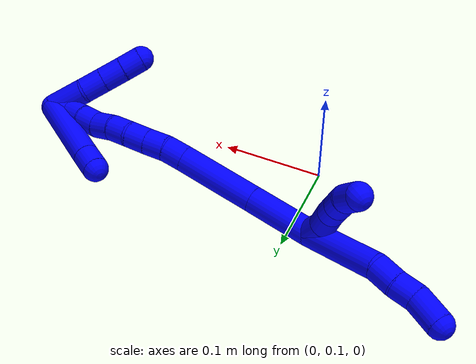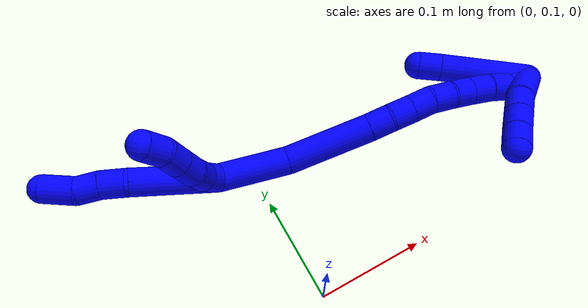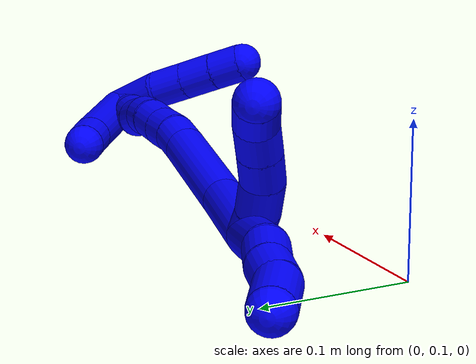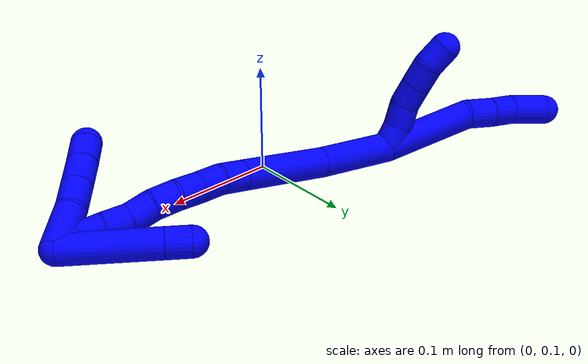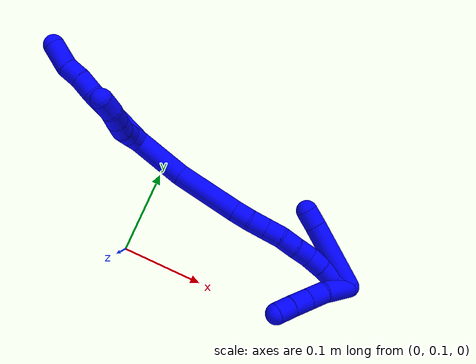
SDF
<sdf version="1.7">
 <world name="default">
  <model name="1">
   <static>0</static>
   <link name="1">
    <collision name="collision-cylinder-e_1_2_8">
     <pose>-0.013044 -0.000897 -0.035909 3.11662 -0.348327 -2.99989</pose>
     <geometry><cylinder><radius>0.0125</radius><length>0.07643</length></cylinder></geometry>
     <surface>
      <friction><ode><mu>1.16</mu><mu2>1.16</mu2><slip1>0</slip1><slip2>0</slip2></ode></friction>
      <contact><ode><kp>1e+06</kp><kd>1</kd><max_vel>0</max_vel><min_depth>0.001</min_depth></ode></contact>
     </surface>
    </collision>
    <visual name="visual-cylinder-e_1_2_8">
     <pose>-0.013044 -0.000897 -0.035909 3.11662 -0.348327 -2.99989</pose>
     <geometry><cylinder><radius>0.0125</radius><length>0.07643</length></cylinder></geometry>
     <material><ambient>0 0 1 1</ambient></material>
    </visual>
    <collision name="collision-cylinder-e_2_8_9">
     <pose>-0.027146 -0.004156 -0.082792 2.9296 -0.094001 -0.83249</pose>
     <geometry><cylinder><radius>0.0125</radius><length>0.022553</length></cylinder></geometry>
     <surface>
      <friction><ode><mu>1.16</mu><mu2>1.16</mu2><slip1>0</slip1><slip2>0</slip2></ode></friction>
      <contact><ode><kp>1e+06</kp><kd>1</kd><max_vel>0</max_vel><min_depth>0.001</min_depth></ode></contact>
     </surface>
    </collision>
    <visual name="visual-cylinder-e_2_8_9">
     <pose>-0.027146 -0.004156 -0.082792 2.9296 -0.094001 -0.83249</pose>
     <geometry><cylinder><radius>0.0125</radius><length>0.022553</length></cylinder></geometry>
     <material><ambient>0 0 1 1</ambient></material>
    </visual>
    <collision name="collision-cylinder-e_3_9_10">
     <pose>-0.030311 -0.00986 -0.103347 2.80598 -0.204737 -1.09025</pose>
     <geometry><cylinder><radius>0.0125</radius><length>0.020724</length></cylinder></geometry>
     <surface>
      <friction><ode><mu>1.16</mu><mu2>1.16</mu2><slip1>0</slip1><slip2>0</slip2></ode></friction>
      <contact><ode><kp>1e+06</kp><kd>1</kd><max_vel>0</max_vel><min_depth>0.001</min_depth></ode></contact>
     </surface>
    </collision>
    <visual name="visual-cylinder-e_3_9_10">
     <pose>-0.030311 -0.00986 -0.103347 2.80598 -0.204737 -1.09025</pose>
     <geometry><cylinder><radius>0.0125</radius><length>0.020724</length></cylinder></geometry>
     <material><ambient>0 0 1 1</ambient></material>
    </visual>
    <collision name="collision-cylinder-e_4_10_6">
     <pose>-0.032126 -0.014817 -0.127984 3.03466 0.019283 0.356495</pose>
     <geometry><cylinder><radius>0.0125</radius><length>0.030294</length></cylinder></geometry>
     <surface>
      <friction><ode><mu>1.16</mu><mu2>1.16</mu2><slip1>0</slip1><slip2>0</slip2></ode></friction>
      <contact><ode><kp>1e+06</kp><kd>1</kd><max_vel>0</max_vel><min_depth>0.001</min_depth></ode></contact>
     </surface>
    </collision>
    <visual name="visual-cylinder-e_4_10_6">
     <pose>-0.032126 -0.014817 -0.127984 3.03466 0.019283 0.356495</pose>
     <geometry><cylinder><radius>0.0125</radius><length>0.030294</length></cylinder></geometry>
     <material><ambient>0 0 1 1</ambient></material>
    </visual>
    <collision name="collision-cylinder-e_1_2_11">
     <pose>-0.007724 0.004014 -0.004923 -2.45759 -0.88257 1.84992</pose>
     <geometry><cylinder><radius>0.0125</radius><length>0.02</length></cylinder></geometry>
     <surface>
      <friction><ode><mu>1.16</mu><mu2>1.16</mu2><slip1>0</slip1><slip2>0</slip2></ode></friction>
      <contact><ode><kp>1e+06</kp><kd>1</kd><max_vel>0</max_vel><min_depth>0.001</min_depth></ode></contact>
     </surface>
    </collision>
    <visual name="visual-cylinder-e_1_2_11">
     <pose>-0.007724 0.004014 -0.004923 -2.45759 -0.88257 1.84992</pose>
     <geometry><cylinder><radius>0.0125</radius><length>0.02</length></cylinder></geometry>
     <material><ambient>0 0 1 1</ambient></material>
    </visual>
    <collision name="collision-cylinder-e_2_11_12">
     <pose>-0.022974 0.013891 -0.012841 -2.04311 -0.852025 1.276</pose>
     <geometry><cylinder><radius>0.0125</radius><length>0.02</length></cylinder></geometry>
     <surface>
      <friction><ode><mu>1.16</mu><mu2>1.16</mu2><slip1>0</slip1><slip2>0</slip2></ode></friction>
      <contact><ode><kp>1e+06</kp><kd>1</kd><max_vel>0</max_vel><min_depth>0.001</min_depth></ode></contact>
     </surface>
    </collision>
    <visual name="visual-cylinder-e_2_11_12">
     <pose>-0.022974 0.013891 -0.012841 -2.04311 -0.852025 1.276</pose>
     <geometry><cylinder><radius>0.0125</radius><length>0.02</length></cylinder></geometry>
     <material><ambient>0 0 1 1</ambient></material>
    </visual>
    <collision name="collision-cylinder-e_3_12_13">
     <pose>-0.036296 0.026375 -0.020588 -2.19322 -0.618316 1.11333</pose>
     <geometry><cylinder><radius>0.0125</radius><length>0.02</length></cylinder></geometry>
     <surface>
      <friction><ode><mu>1.16</mu><mu2>1.16</mu2><slip1>0</slip1><slip2>0</slip2></ode></friction>
      <contact><ode><kp>1e+06</kp><kd>1</kd><max_vel>0</max_vel><min_depth>0.001</min_depth></ode></contact>
     </surface>
    </collision>
    <visual name="visual-cylinder-e_3_12_13">
     <pose>-0.036296 0.026375 -0.020588 -2.19322 -0.618316 1.11333</pose>
     <geometry><cylinder><radius>0.0125</radius><length>0.02</length></cylinder></geometry>
     <material><ambient>0 0 1 1</ambient></material>
    </visual>
    <collision name="collision-cylinder-e_4_13_14">
     <pose>-0.04774 0.039649 -0.030222 -2.20403 -0.600019 1.09669</pose>
     <geometry><cylinder><radius>0.0125</radius><length>0.02</length></cylinder></geometry>
     <surface>
      <friction><ode><mu>1.16</mu><mu2>1.16</mu2><slip1>0</slip1><slip2>0</slip2></ode></friction>
      <contact><ode><kp>1e+06</kp><kd>1</kd><max_vel>0</max_vel><min_depth>0.001</min_depth></ode></contact>
     </surface>
    </collision>
    <visual name="visual-cylinder-e_4_13_14">
     <pose>-0.04774 0.039649 -0.030222 -2.20403 -0.600019 1.09669</pose>
     <geometry><cylinder><radius>0.0125</radius><length>0.02</length></cylinder></geometry>
     <material><ambient>0 0 1 1</ambient></material>
    </visual>
    <collision name="collision-cylinder-e_5_14_5">
     <pose>-0.059 0.050694 -0.04212 -2.58212 -0.596068 1.63777</pose>
     <geometry><cylinder><radius>0.0125</radius><length>0.02</length></cylinder></geometry>
     <surface>
      <friction><ode><mu>1.16</mu><mu2>1.16</mu2><slip1>0</slip1><slip2>0</slip2></ode></friction>
      <contact><ode><kp>1e+06</kp><kd>1</kd><max_vel>0</max_vel><min_depth>0.001</min_depth></ode></contact>
     </surface>
    </collision>
    <visual name="visual-cylinder-e_5_14_5">
     <pose>-0.059 0.050694 -0.04212 -2.58212 -0.596068 1.63777</pose>
     <geometry><cylinder><radius>0.0125</radius><length>0.02</length></cylinder></geometry>
     <material><ambient>0 0 1 1</ambient></material>
    </visual>
    <collision name="collision-cylinder-e_1_2_15">
     <pose>0.008266 0.009158 0.029005 -0.305816 0.265364 -0.041131</pose>
     <geometry><cylinder><radius>0.0125</radius><length>0.06304</length></cylinder></geometry>
     <surface>
      <friction><ode><mu>1.16</mu><mu2>1.16</mu2><slip1>0</slip1><slip2>0</slip2></ode></friction>
      <contact><ode><kp>1e+06</kp><kd>1</kd><max_vel>0</max_vel><min_depth>0.001</min_depth></ode></contact>
     </surface>
    </collision>
    <visual name="visual-cylinder-e_1_2_15">
     <pose>0.008266 0.009158 0.029005 -0.305816 0.265364 -0.041131</pose>
     <geometry><cylinder><radius>0.0125</radius><length>0.06304</length></cylinder></geometry>
     <material><ambient>0 0 1 1</ambient></material>
    </visual>
    <collision name="collision-cylinder-e_2_15_16">
     <pose>0.02573 0.035018 0.091028 -0.468325 0.243624 -0.058386</pose>
     <geometry><cylinder><radius>0.0125</radius><length>0.076255</length></cylinder></geometry>
     <surface>
      <friction><ode><mu>1.16</mu><mu2>1.16</mu2><slip1>0</slip1><slip2>0</slip2></ode></friction>
      <contact><ode><kp>1e+06</kp><kd>1</kd><max_vel>0</max_vel><min_depth>0.001</min_depth></ode></contact>
     </surface>
    </collision>
    <visual name="visual-cylinder-e_2_15_16">
     <pose>0.02573 0.035018 0.091028 -0.468325 0.243624 -0.058386</pose>
     <geometry><cylinder><radius>0.0125</radius><length>0.076255</length></cylinder></geometry>
     <material><ambient>0 0 1 1</ambient></material>
    </visual>
    <collision name="collision-cylinder-e_3_16_17">
     <pose>0.037511 0.056504 0.132585 -0.510736 0.258133 -0.067741</pose>
     <geometry><cylinder><radius>0.0125</radius><length>0.020246</length></cylinder></geometry>
     <surface>
      <friction><ode><mu>1.16</mu><mu2>1.16</mu2><slip1>0</slip1><slip2>0</slip2></ode></friction>
      <contact><ode><kp>1e+06</kp><kd>1</kd><max_vel>0</max_vel><min_depth>0.001</min_depth></ode></contact>
     </surface>
    </collision>
    <visual name="visual-cylinder-e_3_16_17">
     <pose>0.037511 0.056504 0.132585 -0.510736 0.258133 -0.067741</pose>
     <geometry><cylinder><radius>0.0125</radius><length>0.020246</length></cylinder></geometry>
     <material><ambient>0 0 1 1</ambient></material>
    </visual>
    <collision name="collision-cylinder-e_4_17_18">
     <pose>0.044221 0.065037 0.149539 -0.419008 0.420969 -0.090791</pose>
     <geometry><cylinder><radius>0.0125</radius><length>0.020189</length></cylinder></geometry>
     <surface>
      <friction><ode><mu>1.16</mu><mu2>1.16</mu2><slip1>0</slip1><slip2>0</slip2></ode></friction>
      <contact><ode><kp>1e+06</kp><kd>1</kd><max_vel>0</max_vel><min_depth>0.001</min_depth></ode></contact>
     </surface>
    </collision>
    <visual name="visual-cylinder-e_4_17_18">
     <pose>0.044221 0.065037 0.149539 -0.419008 0.420969 -0.090791</pose>
     <geometry><cylinder><radius>0.0125</radius><length>0.020189</length></cylinder></geometry>
     <material><ambient>0 0 1 1</ambient></material>
    </visual>
    <collision name="collision-cylinder-e_5_18_19">
     <pose>0.052154 0.072952 0.166313 -0.462494 0.387184 -0.092257</pose>
     <geometry><cylinder><radius>0.0125</radius><length>0.020171</length></cylinder></geometry>
     <surface>
      <friction><ode><mu>1.16</mu><mu2>1.16</mu2><slip1>0</slip1><slip2>0</slip2></ode></friction>
      <contact><ode><kp>1e+06</kp><kd>1</kd><max_vel>0</max_vel><min_depth>0.001</min_depth></ode></contact>
     </surface>
    </collision>
    <visual name="visual-cylinder-e_5_18_19">
     <pose>0.052154 0.072952 0.166313 -0.462494 0.387184 -0.092257</pose>
     <geometry><cylinder><radius>0.0125</radius><length>0.020171</length></cylinder></geometry>
     <material><ambient>0 0 1 1</ambient></material>
    </visual>
    <collision name="collision-cylinder-e_6_19_20">
     <pose>0.059974 0.079206 0.183643 -0.22858 0.410785 -0.047819</pose>
     <geometry><cylinder><radius>0.0125</radius><length>0.020094</length></cylinder></geometry>
     <surface>
      <friction><ode><mu>1.16</mu><mu2>1.16</mu2><slip1>0</slip1><slip2>0</slip2></ode></friction>
      <contact><ode><kp>1e+06</kp><kd>1</kd><max_vel>0</max_vel><min_depth>0.001</min_depth></ode></contact>
     </surface>
    </collision>
    <visual name="visual-cylinder-e_6_19_20">
     <pose>0.059974 0.079206 0.183643 -0.22858 0.410785 -0.047819</pose>
     <geometry><cylinder><radius>0.0125</radius><length>0.020094</length></cylinder></geometry>
     <material><ambient>0 0 1 1</ambient></material>
    </visual>
    <collision name="collision-cylinder-e_7_20_21">
     <pose>0.06924 0.082246 0.201071 -0.112113 0.55307 -0.031849</pose>
     <geometry><cylinder><radius>0.0125</radius><length>0.020003</length></cylinder></geometry>
     <surface>
      <friction><ode><mu>1.16</mu><mu2>1.16</mu2><slip1>0</slip1><slip2>0</slip2></ode></friction>
      <contact><ode><kp>1e+06</kp><kd>1</kd><max_vel>0</max_vel><min_depth>0.001</min_depth></ode></contact>
     </surface>
    </collision>
    <visual name="visual-cylinder-e_7_20_21">
     <pose>0.06924 0.082246 0.201071 -0.112113 0.55307 -0.031849</pose>
     <geometry><cylinder><radius>0.0125</radius><length>0.020003</length></cylinder></geometry>
     <material><ambient>0 0 1 1</ambient></material>
    </visual>
    <collision name="collision-cylinder-e_8_21_22">
     <pose>0.077863 0.085027 0.218765 -0.19548 0.34364 -0.034027</pose>
     <geometry><cylinder><radius>0.0125</radius><length>0.020001</length></cylinder></geometry>
     <surface>
      <friction><ode><mu>1.16</mu><mu2>1.16</mu2><slip1>0</slip1><slip2>0</slip2></ode></friction>
      <contact><ode><kp>1e+06</kp><kd>1</kd><max_vel>0</max_vel><min_depth>0.001</min_depth></ode></contact>
     </surface>
    </collision>
    <visual name="visual-cylinder-e_8_21_22">
     <pose>0.077863 0.085027 0.218765 -0.19548 0.34364 -0.034027</pose>
     <geometry><cylinder><radius>0.0125</radius><length>0.020001</length></cylinder></geometry>
     <material><ambient>0 0 1 1</ambient></material>
    </visual>
    <collision name="collision-cylinder-e_9_22_23">
     <pose>0.084698 0.087588 0.237353 -0.078122 0.353946 -0.013979</pose>
     <geometry><cylinder><radius>0.0125</radius><length>0.02</length></cylinder></geometry>
     <surface>
      <friction><ode><mu>1.16</mu><mu2>1.16</mu2><slip1>0</slip1><slip2>0</slip2></ode></friction>
      <contact><ode><kp>1e+06</kp><kd>1</kd><max_vel>0</max_vel><min_depth>0.001</min_depth></ode></contact>
     </surface>
    </collision>
    <visual name="visual-cylinder-e_9_22_23">
     <pose>0.084698 0.087588 0.237353 -0.078122 0.353946 -0.013979</pose>
     <geometry><cylinder><radius>0.0125</radius><length>0.02</length></cylinder></geometry>
     <material><ambient>0 0 1 1</ambient></material>
    </visual>
    <collision name="collision-cylinder-e_10_23_1">
     <pose>0.092952 0.091698 0.254808 -0.395009 0.499268 -0.10195</pose>
     <geometry><cylinder><radius>0.0125</radius><length>0.02</length></cylinder></geometry>
     <surface>
      <friction><ode><mu>1.16</mu><mu2>1.16</mu2><slip1>0</slip1><slip2>0</slip2></ode></friction>
      <contact><ode><kp>1e+06</kp><kd>1</kd><max_vel>0</max_vel><min_depth>0.001</min_depth></ode></contact>
     </surface>
    </collision>
    <visual name="visual-cylinder-e_10_23_1">
     <pose>0.092952 0.091698 0.254808 -0.395009 0.499268 -0.10195</pose>
     <geometry><cylinder><radius>0.0125</radius><length>0.02</length></cylinder></geometry>
     <material><ambient>0 0 1 1</ambient></material>
    </visual>
    <collision name="collision-cylinder-e_1_1_24">
     <pose>0.09781 0.094516 0.223008 3.12755 0.001751 0.248062</pose>
     <geometry><cylinder><radius>0.0125</radius><length>0.079815</length></cylinder></geometry>
     <surface>
      <friction><ode><mu>1.16</mu><mu2>1.16</mu2><slip1>0</slip1><slip2>0</slip2></ode></friction>
      <contact><ode><kp>1e+06</kp><kd>1</kd><max_vel>0</max_vel><min_depth>0.001</min_depth></ode></contact>
     </surface>
    </collision>
    <visual name="visual-cylinder-e_1_1_24">
     <pose>0.09781 0.094516 0.223008 3.12755 0.001751 0.248062</pose>
     <geometry><cylinder><radius>0.0125</radius><length>0.079815</length></cylinder></geometry>
     <material><ambient>0 0 1 1</ambient></material>
    </visual>
    <collision name="collision-cylinder-e_2_24_4">
     <pose>0.097816 0.093521 0.173021 3.09854 -0.006358 -0.2932</pose>
     <geometry><cylinder><radius>0.0125</radius><length>0.020185</length></cylinder></geometry>
     <surface>
      <friction><ode><mu>1.16</mu><mu2>1.16</mu2><slip1>0</slip1><slip2>0</slip2></ode></friction>
      <contact><ode><kp>1e+06</kp><kd>1</kd><max_vel>0</max_vel><min_depth>0.001</min_depth></ode></contact>
     </surface>
    </collision>
    <visual name="visual-cylinder-e_2_24_4">
     <pose>0.097816 0.093521 0.173021 3.09854 -0.006358 -0.2932</pose>
     <geometry><cylinder><radius>0.0125</radius><length>0.020185</length></cylinder></geometry>
     <material><ambient>0 0 1 1</ambient></material>
    </visual>
    <collision name="collision-cylinder-e_1_1_25">
     <pose>0.081125 0.091447 0.257624 2.54002 -1.20245 -2.29219</pose>
     <geometry><cylinder><radius>0.0125</radius><length>0.035619</length></cylinder></geometry>
     <surface>
      <friction><ode><mu>1.16</mu><mu2>1.16</mu2><slip1>0</slip1><slip2>0</slip2></ode></friction>
      <contact><ode><kp>1e+06</kp><kd>1</kd><max_vel>0</max_vel><min_depth>0.001</min_depth></ode></contact>
     </surface>
    </collision>
    <visual name="visual-cylinder-e_1_1_25">
     <pose>0.081125 0.091447 0.257624 2.54002 -1.20245 -2.29219</pose>
     <geometry><cylinder><radius>0.0125</radius><length>0.035619</length></cylinder></geometry>
     <material><ambient>0 0 1 1</ambient></material>
    </visual>
    <collision name="collision-cylinder-e_2_25_26">
     <pose>0.054357 0.083945 0.250822 1.94379 -1.18201 -1.55379</pose>
     <geometry><cylinder><radius>0.0125</radius><length>0.021944</length></cylinder></geometry>
     <surface>
      <friction><ode><mu>1.16</mu><mu2>1.16</mu2><slip1>0</slip1><slip2>0</slip2></ode></friction>
      <contact><ode><kp>1e+06</kp><kd>1</kd><max_vel>0</max_vel><min_depth>0.001</min_depth></ode></contact>
     </surface>
    </collision>
    <visual name="visual-cylinder-e_2_25_26">
     <pose>0.054357 0.083945 0.250822 1.94379 -1.18201 -1.55379</pose>
     <geometry><cylinder><radius>0.0125</radius><length>0.021944</length></cylinder></geometry>
     <material><ambient>0 0 1 1</ambient></material>
    </visual>
    <collision name="collision-cylinder-e_3_26_27">
     <pose>0.033958 0.076205 0.247772 1.94844 -1.18513 -1.56216</pose>
     <geometry><cylinder><radius>0.0125</radius><length>0.022117</length></cylinder></geometry>
     <surface>
      <friction><ode><mu>1.16</mu><mu2>1.16</mu2><slip1>0</slip1><slip2>0</slip2></ode></friction>
      <contact><ode><kp>1e+06</kp><kd>1</kd><max_vel>0</max_vel><min_depth>0.001</min_depth></ode></contact>
     </surface>
    </collision>
    <visual name="visual-cylinder-e_3_26_27">
     <pose>0.033958 0.076205 0.247772 1.94844 -1.18513 -1.56216</pose>
     <geometry><cylinder><radius>0.0125</radius><length>0.022117</length></cylinder></geometry>
     <material><ambient>0 0 1 1</ambient></material>
    </visual>
    <collision name="collision-cylinder-e_4_27_3">
     <pose>0.014305 0.068658 0.245142 1.86036 -1.18317 -1.46697</pose>
     <geometry><cylinder><radius>0.0125</radius><length>0.02032</length></cylinder></geometry>
     <surface>
      <friction><ode><mu>1.16</mu><mu2>1.16</mu2><slip1>0</slip1><slip2>0</slip2></ode></friction>
      <contact><ode><kp>1e+06</kp><kd>1</kd><max_vel>0</max_vel><min_depth>0.001</min_depth></ode></contact>
     </surface>
    </collision>
    <visual name="visual-cylinder-e_4_27_3">
     <pose>0.014305 0.068658 0.245142 1.86036 -1.18317 -1.46697</pose>
     <geometry><cylinder><radius>0.0125</radius><length>0.02032</length></cylinder></geometry>
     <material><ambient>0 0 1 1</ambient></material>
    </visual>
    <collision name="collision-sphere-3">
     <pose>0.004899 0.064978 0.244045 0 -0 0</pose>
     <geometry><sphere><radius>0.0125</radius></sphere></geometry>
     <surface>
      <friction><ode><mu>1.16</mu><mu2>1.16</mu2><slip1>0</slip1><slip2>0</slip2></ode></friction>
      <contact><ode><kp>1e+06</kp><kd>1</kd><max_vel>0</max_vel><min_depth>0.001</min_depth></ode></contact>
     </surface>
    </collision>
    <visual name="visual-sphere-3">
     <pose>0.004899 0.064978 0.244045 0 -0 0</pose>
     <geometry><sphere><radius>0.0125</radius></sphere></geometry>
     <material><ambient>0 0 1 1</ambient></material>
    </visual>
    <collision name="collision-sphere-27">
     <pose>0.023712 0.072339 0.246238 0 -0 0</pose>
     <geometry><sphere><radius>0.0125</radius></sphere></geometry>
     <surface>
      <friction><ode><mu>1.16</mu><mu2>1.16</mu2><slip1>0</slip1><slip2>0</slip2></ode></friction>
      <contact><ode><kp>1e+06</kp><kd>1</kd><max_vel>0</max_vel><min_depth>0.001</min_depth></ode></contact>
     </surface>
    </collision>
    <visual name="visual-sphere-27">
     <pose>0.023712 0.072339 0.246238 0 -0 0</pose>
     <geometry><sphere><radius>0.0125</radius></sphere></geometry>
     <material><ambient>0 0 1 1</ambient></material>
    </visual>
    <collision name="collision-sphere-26">
     <pose>0.044204 0.080072 0.249306 0 -0 0</pose>
     <geometry><sphere><radius>0.0125</radius></sphere></geometry>
     <surface>
      <friction><ode><mu>1.16</mu><mu2>1.16</mu2><slip1>0</slip1><slip2>0</slip2></ode></friction>
      <contact><ode><kp>1e+06</kp><kd>1</kd><max_vel>0</max_vel><min_depth>0.001</min_depth></ode></contact>
     </surface>
    </collision>
    <visual name="visual-sphere-26">
     <pose>0.044204 0.080072 0.249306 0 -0 0</pose>
     <geometry><sphere><radius>0.0125</radius></sphere></geometry>
     <material><ambient>0 0 1 1</ambient></material>
    </visual>
    <collision name="collision-sphere-25">
     <pose>0.06451 0.087818 0.252337 0 -0 0</pose>
     <geometry><sphere><radius>0.0125</radius></sphere></geometry>
     <surface>
      <friction><ode><mu>1.16</mu><mu2>1.16</mu2><slip1>0</slip1><slip2>0</slip2></ode></friction>
      <contact><ode><kp>1e+06</kp><kd>1</kd><max_vel>0</max_vel><min_depth>0.001</min_depth></ode></contact>
     </surface>
    </collision>
    <visual name="visual-sphere-25">
     <pose>0.06451 0.087818 0.252337 0 -0 0</pose>
     <geometry><sphere><radius>0.0125</radius></sphere></geometry>
     <material><ambient>0 0 1 1</ambient></material>
    </visual>
    <collision name="collision-sphere-4">
     <pose>0.097752 0.093087 0.162939 0 -0 0</pose>
     <geometry><sphere><radius>0.0125</radius></sphere></geometry>
     <surface>
      <friction><ode><mu>1.16</mu><mu2>1.16</mu2><slip1>0</slip1><slip2>0</slip2></ode></friction>
      <contact><ode><kp>1e+06</kp><kd>1</kd><max_vel>0</max_vel><min_depth>0.001</min_depth></ode></contact>
     </surface>
    </collision>
    <visual name="visual-sphere-4">
     <pose>0.097752 0.093087 0.162939 0 -0 0</pose>
     <geometry><sphere><radius>0.0125</radius></sphere></geometry>
     <material><ambient>0 0 1 1</ambient></material>
    </visual>
    <collision name="collision-sphere-24">
     <pose>0.09788 0.093956 0.183104 0 -0 0</pose>
     <geometry><sphere><radius>0.0125</radius></sphere></geometry>
     <surface>
      <friction><ode><mu>1.16</mu><mu2>1.16</mu2><slip1>0</slip1><slip2>0</slip2></ode></friction>
      <contact><ode><kp>1e+06</kp><kd>1</kd><max_vel>0</max_vel><min_depth>0.001</min_depth></ode></contact>
     </surface>
    </collision>
    <visual name="visual-sphere-24">
     <pose>0.09788 0.093956 0.183104 0 -0 0</pose>
     <geometry><sphere><radius>0.0125</radius></sphere></geometry>
     <material><ambient>0 0 1 1</ambient></material>
    </visual>
    <collision name="collision-sphere-1">
     <pose>0.09774 0.095077 0.262911 0 -0 0</pose>
     <geometry><sphere><radius>0.0125</radius></sphere></geometry>
     <surface>
      <friction><ode><mu>1.16</mu><mu2>1.16</mu2><slip1>0</slip1><slip2>0</slip2></ode></friction>
      <contact><ode><kp>1e+06</kp><kd>1</kd><max_vel>0</max_vel><min_depth>0.001</min_depth></ode></contact>
     </surface>
    </collision>
    <visual name="visual-sphere-1">
     <pose>0.09774 0.095077 0.262911 0 -0 0</pose>
     <geometry><sphere><radius>0.0125</radius></sphere></geometry>
     <material><ambient>0 0 1 1</ambient></material>
    </visual>
    <collision name="collision-sphere-23">
     <pose>0.088165 0.08832 0.246705 0 -0 0</pose>
     <geometry><sphere><radius>0.0125</radius></sphere></geometry>
     <surface>
      <friction><ode><mu>1.16</mu><mu2>1.16</mu2><slip1>0</slip1><slip2>0</slip2></ode></friction>
      <contact><ode><kp>1e+06</kp><kd>1</kd><max_vel>0</max_vel><min_depth>0.001</min_depth></ode></contact>
     </surface>
    </collision>
    <visual name="visual-sphere-23">
     <pose>0.088165 0.08832 0.246705 0 -0 0</pose>
     <geometry><sphere><radius>0.0125</radius></sphere></geometry>
     <material><ambient>0 0 1 1</ambient></material>
    </visual>
    <collision name="collision-sphere-22">
     <pose>0.081232 0.086856 0.228001 0 -0 0</pose>
     <geometry><sphere><radius>0.0125</radius></sphere></geometry>
     <surface>
      <friction><ode><mu>1.16</mu><mu2>1.16</mu2><slip1>0</slip1><slip2>0</slip2></ode></friction>
      <contact><ode><kp>1e+06</kp><kd>1</kd><max_vel>0</max_vel><min_depth>0.001</min_depth></ode></contact>
     </surface>
    </collision>
    <visual name="visual-sphere-22">
     <pose>0.081232 0.086856 0.228001 0 -0 0</pose>
     <geometry><sphere><radius>0.0125</radius></sphere></geometry>
     <material><ambient>0 0 1 1</ambient></material>
    </visual>
    <collision name="collision-sphere-21">
     <pose>0.074494 0.083198 0.209528 0 -0 0</pose>
     <geometry><sphere><radius>0.0125</radius></sphere></geometry>
     <surface>
      <friction><ode><mu>1.16</mu><mu2>1.16</mu2><slip1>0</slip1><slip2>0</slip2></ode></friction>
      <contact><ode><kp>1e+06</kp><kd>1</kd><max_vel>0</max_vel><min_depth>0.001</min_depth></ode></contact>
     </surface>
    </collision>
    <visual name="visual-sphere-21">
     <pose>0.074494 0.083198 0.209528 0 -0 0</pose>
     <geometry><sphere><radius>0.0125</radius></sphere></geometry>
     <material><ambient>0 0 1 1</ambient></material>
    </visual>
    <collision name="collision-sphere-11">
     <pose>-0.015447 0.008027 -0.009846 0 -0 0</pose>
     <geometry><sphere><radius>0.0125</radius></sphere></geometry>
     <surface>
      <friction><ode><mu>1.16</mu><mu2>1.16</mu2><slip1>0</slip1><slip2>0</slip2></ode></friction>
      <contact><ode><kp>1e+06</kp><kd>1</kd><max_vel>0</max_vel><min_depth>0.001</min_depth></ode></contact>
     </surface>
    </collision>
    <visual name="visual-sphere-11">
     <pose>-0.015447 0.008027 -0.009846 0 -0 0</pose>
     <geometry><sphere><radius>0.0125</radius></sphere></geometry>
     <material><ambient>0 0 1 1</ambient></material>
    </visual>
    <collision name="collision-sphere-6">
     <pose>-0.031833 -0.016434 -0.143042 0 -0 0</pose>
     <geometry><sphere><radius>0.0125</radius></sphere></geometry>
     <surface>
      <friction><ode><mu>1.16</mu><mu2>1.16</mu2><slip1>0</slip1><slip2>0</slip2></ode></friction>
      <contact><ode><kp>1e+06</kp><kd>1</kd><max_vel>0</max_vel><min_depth>0.001</min_depth></ode></contact>
     </surface>
    </collision>
    <visual name="visual-sphere-6">
     <pose>-0.031833 -0.016434 -0.143042 0 -0 0</pose>
     <geometry><sphere><radius>0.0125</radius></sphere></geometry>
     <material><ambient>0 0 1 1</ambient></material>
    </visual>
    <collision name="collision-sphere-10">
     <pose>-0.032418 -0.013201 -0.112927 0 -0 0</pose>
     <geometry><sphere><radius>0.0125</radius></sphere></geometry>
     <surface>
      <friction><ode><mu>1.16</mu><mu2>1.16</mu2><slip1>0</slip1><slip2>0</slip2></ode></friction>
      <contact><ode><kp>1e+06</kp><kd>1</kd><max_vel>0</max_vel><min_depth>0.001</min_depth></ode></contact>
     </surface>
    </collision>
    <visual name="visual-sphere-10">
     <pose>-0.032418 -0.013201 -0.112927 0 -0 0</pose>
     <geometry><sphere><radius>0.0125</radius></sphere></geometry>
     <material><ambient>0 0 1 1</ambient></material>
    </visual>
    <collision name="collision-sphere-9">
     <pose>-0.028204 -0.006518 -0.093768 0 -0 0</pose>
     <geometry><sphere><radius>0.0125</radius></sphere></geometry>
     <surface>
      <friction><ode><mu>1.16</mu><mu2>1.16</mu2><slip1>0</slip1><slip2>0</slip2></ode></friction>
      <contact><ode><kp>1e+06</kp><kd>1</kd><max_vel>0</max_vel><min_depth>0.001</min_depth></ode></contact>
     </surface>
    </collision>
    <visual name="visual-sphere-9">
     <pose>-0.028204 -0.006518 -0.093768 0 -0 0</pose>
     <geometry><sphere><radius>0.0125</radius></sphere></geometry>
     <material><ambient>0 0 1 1</ambient></material>
    </visual>
    <collision name="collision-sphere-2">
     <geometry><sphere><radius>0.0125</radius></sphere></geometry>
     <surface>
      <friction><ode><mu>1.16</mu><mu2>1.16</mu2><slip1>0</slip1><slip2>0</slip2></ode></friction>
      <contact><ode><kp>1e+06</kp><kd>1</kd><max_vel>0</max_vel><min_depth>0.001</min_depth></ode></contact>
     </surface>
    </collision>
    <visual name="visual-sphere-2">
     <geometry><sphere><radius>0.0125</radius></sphere></geometry>
     <material><ambient>0 0 1 1</ambient></material>
    </visual>
    <collision name="collision-sphere-19">
     <pose>0.055962 0.077119 0.174671 0 -0 0</pose>
     <geometry><sphere><radius>0.0125</radius></sphere></geometry>
     <surface>
      <friction><ode><mu>1.16</mu><mu2>1.16</mu2><slip1>0</slip1><slip2>0</slip2></ode></friction>
      <contact><ode><kp>1e+06</kp><kd>1</kd><max_vel>0</max_vel><min_depth>0.001</min_depth></ode></contact>
     </surface>
    </collision>
    <visual name="visual-sphere-19">
     <pose>0.055962 0.077119 0.174671 0 -0 0</pose>
     <geometry><sphere><radius>0.0125</radius></sphere></geometry>
     <material><ambient>0 0 1 1</ambient></material>
    </visual>
    <collision name="collision-sphere-8">
     <pose>-0.026087 -0.001794 -0.071817 0 -0 0</pose>
     <geometry><sphere><radius>0.0125</radius></sphere></geometry>
     <surface>
      <friction><ode><mu>1.16</mu><mu2>1.16</mu2><slip1>0</slip1><slip2>0</slip2></ode></friction>
      <contact><ode><kp>1e+06</kp><kd>1</kd><max_vel>0</max_vel><min_depth>0.001</min_depth></ode></contact>
     </surface>
    </collision>
    <visual name="visual-sphere-8">
     <pose>-0.026087 -0.001794 -0.071817 0 -0 0</pose>
     <geometry><sphere><radius>0.0125</radius></sphere></geometry>
     <material><ambient>0 0 1 1</ambient></material>
    </visual>
    <collision name="collision-sphere-12">
     <pose>-0.0305 0.019755 -0.015837 0 -0 0</pose>
     <geometry><sphere><radius>0.0125</radius></sphere></geometry>
     <surface>
      <friction><ode><mu>1.16</mu><mu2>1.16</mu2><slip1>0</slip1><slip2>0</slip2></ode></friction>
      <contact><ode><kp>1e+06</kp><kd>1</kd><max_vel>0</max_vel><min_depth>0.001</min_depth></ode></contact>
     </surface>
    </collision>
    <visual name="visual-sphere-12">
     <pose>-0.0305 0.019755 -0.015837 0 -0 0</pose>
     <geometry><sphere><radius>0.0125</radius></sphere></geometry>
     <material><ambient>0 0 1 1</ambient></material>
    </visual>
    <collision name="collision-sphere-13">
     <pose>-0.042093 0.032996 -0.025338 0 -0 0</pose>
     <geometry><sphere><radius>0.0125</radius></sphere></geometry>
     <surface>
      <friction><ode><mu>1.16</mu><mu2>1.16</mu2><slip1>0</slip1><slip2>0</slip2></ode></friction>
      <contact><ode><kp>1e+06</kp><kd>1</kd><max_vel>0</max_vel><min_depth>0.001</min_depth></ode></contact>
     </surface>
    </collision>
    <visual name="visual-sphere-13">
     <pose>-0.042093 0.032996 -0.025338 0 -0 0</pose>
     <geometry><sphere><radius>0.0125</radius></sphere></geometry>
     <material><ambient>0 0 1 1</ambient></material>
    </visual>
    <collision name="collision-sphere-14">
     <pose>-0.053386 0.046302 -0.035106 0 -0 0</pose>
     <geometry><sphere><radius>0.0125</radius></sphere></geometry>
     <surface>
      <friction><ode><mu>1.16</mu><mu2>1.16</mu2><slip1>0</slip1><slip2>0</slip2></ode></friction>
      <contact><ode><kp>1e+06</kp><kd>1</kd><max_vel>0</max_vel><min_depth>0.001</min_depth></ode></contact>
     </surface>
    </collision>
    <visual name="visual-sphere-14">
     <pose>-0.053386 0.046302 -0.035106 0 -0 0</pose>
     <geometry><sphere><radius>0.0125</radius></sphere></geometry>
     <material><ambient>0 0 1 1</ambient></material>
    </visual>
    <collision name="collision-sphere-5">
     <pose>-0.064614 0.055086 -0.049134 0 -0 0</pose>
     <geometry><sphere><radius>0.0125</radius></sphere></geometry>
     <surface>
      <friction><ode><mu>1.16</mu><mu2>1.16</mu2><slip1>0</slip1><slip2>0</slip2></ode></friction>
      <contact><ode><kp>1e+06</kp><kd>1</kd><max_vel>0</max_vel><min_depth>0.001</min_depth></ode></contact>
     </surface>
    </collision>
    <visual name="visual-sphere-5">
     <pose>-0.064614 0.055086 -0.049134 0 -0 0</pose>
     <geometry><sphere><radius>0.0125</radius></sphere></geometry>
     <material><ambient>0 0 1 1</ambient></material>
    </visual>
    <collision name="collision-sphere-15">
     <pose>0.016533 0.018315 0.058011 0 -0 0</pose>
     <geometry><sphere><radius>0.0125</radius></sphere></geometry>
     <surface>
      <friction><ode><mu>1.16</mu><mu2>1.16</mu2><slip1>0</slip1><slip2>0</slip2></ode></friction>
      <contact><ode><kp>1e+06</kp><kd>1</kd><max_vel>0</max_vel><min_depth>0.001</min_depth></ode></contact>
     </surface>
    </collision>
    <visual name="visual-sphere-15">
     <pose>0.016533 0.018315 0.058011 0 -0 0</pose>
     <geometry><sphere><radius>0.0125</radius></sphere></geometry>
     <material><ambient>0 0 1 1</ambient></material>
    </visual>
    <collision name="collision-sphere-16">
     <pose>0.034927 0.05172 0.124046 0 -0 0</pose>
     <geometry><sphere><radius>0.0125</radius></sphere></geometry>
     <surface>
      <friction><ode><mu>1.16</mu><mu2>1.16</mu2><slip1>0</slip1><slip2>0</slip2></ode></friction>
      <contact><ode><kp>1e+06</kp><kd>1</kd><max_vel>0</max_vel><min_depth>0.001</min_depth></ode></contact>
     </surface>
    </collision>
    <visual name="visual-sphere-16">
     <pose>0.034927 0.05172 0.124046 0 -0 0</pose>
     <geometry><sphere><radius>0.0125</radius></sphere></geometry>
     <material><ambient>0 0 1 1</ambient></material>
    </visual>
    <collision name="collision-sphere-17">
     <pose>0.040096 0.061289 0.141123 0 -0 0</pose>
     <geometry><sphere><radius>0.0125</radius></sphere></geometry>
     <surface>
      <friction><ode><mu>1.16</mu><mu2>1.16</mu2><slip1>0</slip1><slip2>0</slip2></ode></friction>
      <contact><ode><kp>1e+06</kp><kd>1</kd><max_vel>0</max_vel><min_depth>0.001</min_depth></ode></contact>
     </surface>
    </collision>
    <visual name="visual-sphere-17">
     <pose>0.040096 0.061289 0.141123 0 -0 0</pose>
     <geometry><sphere><radius>0.0125</radius></sphere></geometry>
     <material><ambient>0 0 1 1</ambient></material>
    </visual>
    <collision name="collision-sphere-18">
     <pose>0.048346 0.068785 0.157956 0 -0 0</pose>
     <geometry><sphere><radius>0.0125</radius></sphere></geometry>
     <surface>
      <friction><ode><mu>1.16</mu><mu2>1.16</mu2><slip1>0</slip1><slip2>0</slip2></ode></friction>
      <contact><ode><kp>1e+06</kp><kd>1</kd><max_vel>0</max_vel><min_depth>0.001</min_depth></ode></contact>
     </surface>
    </collision>
    <visual name="visual-sphere-18">
     <pose>0.048346 0.068785 0.157956 0 -0 0</pose>
     <geometry><sphere><radius>0.0125</radius></sphere></geometry>
     <material><ambient>0 0 1 1</ambient></material>
    </visual>
    <collision name="collision-sphere-20">
     <pose>0.063986 0.081294 0.192614 0 -0 0</pose>
     <geometry><sphere><radius>0.0125</radius></sphere></geometry>
     <surface>
      <friction><ode><mu>1.16</mu><mu2>1.16</mu2><slip1>0</slip1><slip2>0</slip2></ode></friction>
      <contact><ode><kp>1e+06</kp><kd>1</kd><max_vel>0</max_vel><min_depth>0.001</min_depth></ode></contact>
     </surface>
    </collision>
    <visual name="visual-sphere-20">
     <pose>0.063986 0.081294 0.192614 0 -0 0</pose>
     <geometry><sphere><radius>0.0125</radius></sphere></geometry>
     <material><ambient>0 0 1 1</ambient></material>
    </visual>
    <inertial>
     <pose>0.028144 0.046917 0.097797 0 -0 0</pose>
     <mass>0.75</mass>
     <inertia><ixx>8e-05</ixx><ixy>0</ixy><ixz>0</ixz><iyy>8e-05</iyy><iyz>0</iyz><izz>-2.2e-05</izz></inertia>
    </inertial>
   </link>
   <pose>-0.035065 0.225214 0.058223 1.6042 0.731685 0.939761</pose>
  </model>
 </world>
</sdf>
